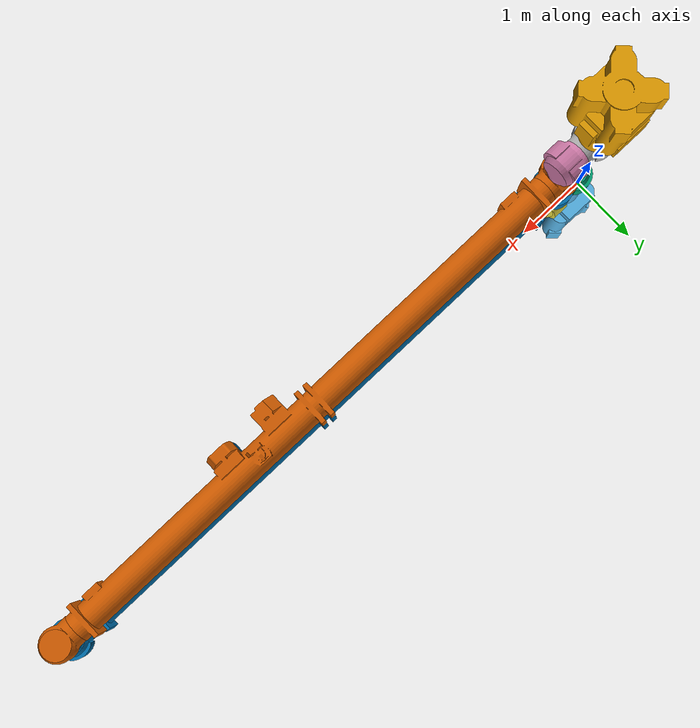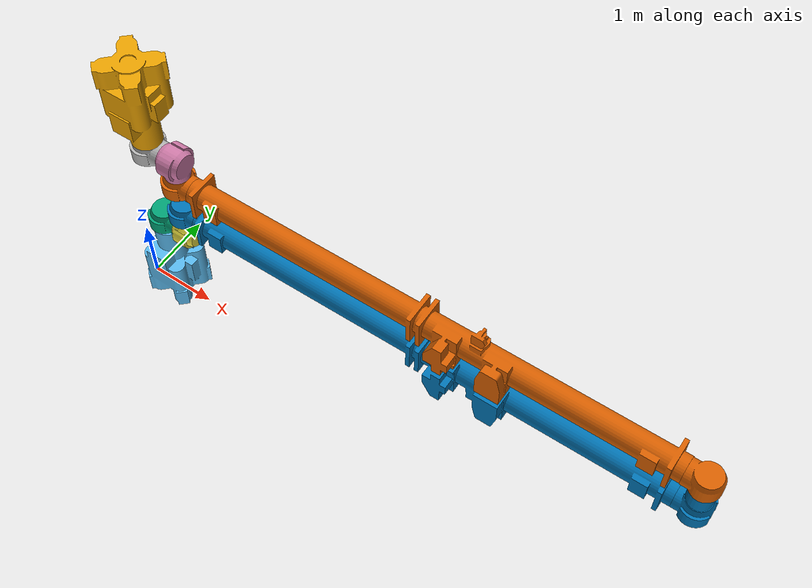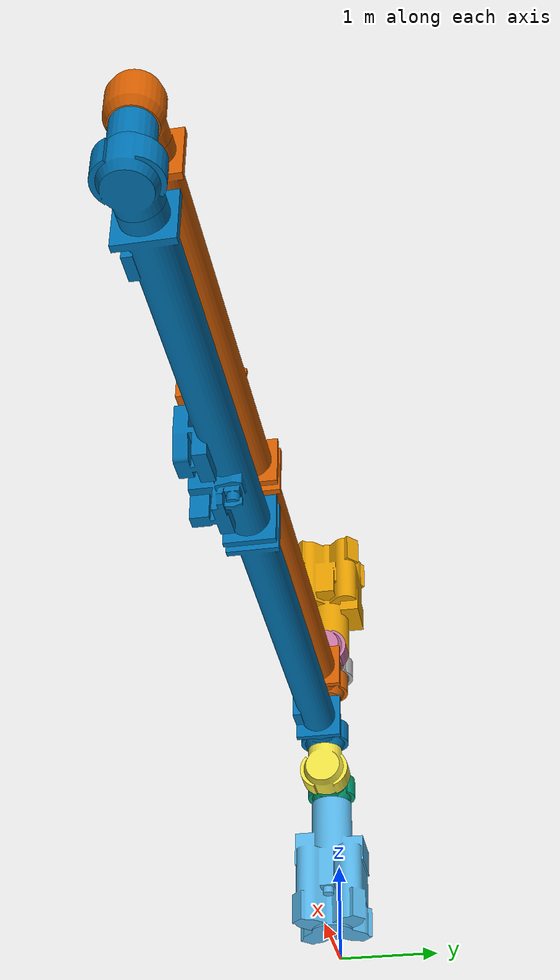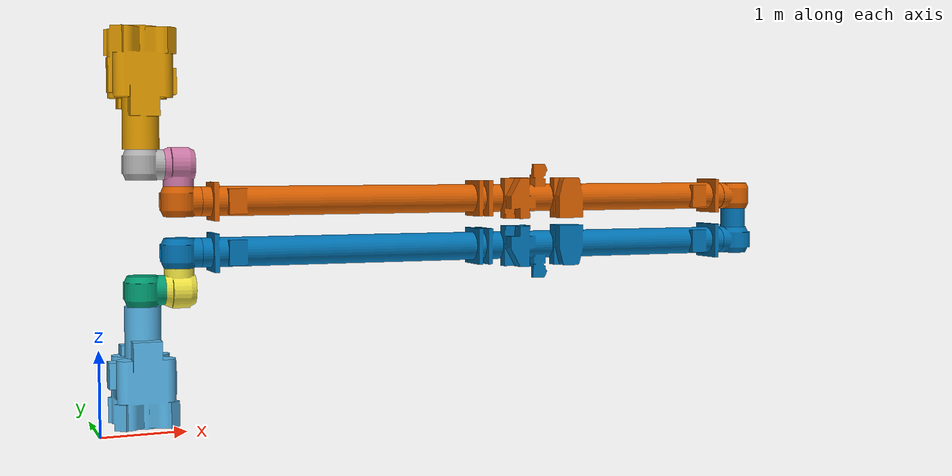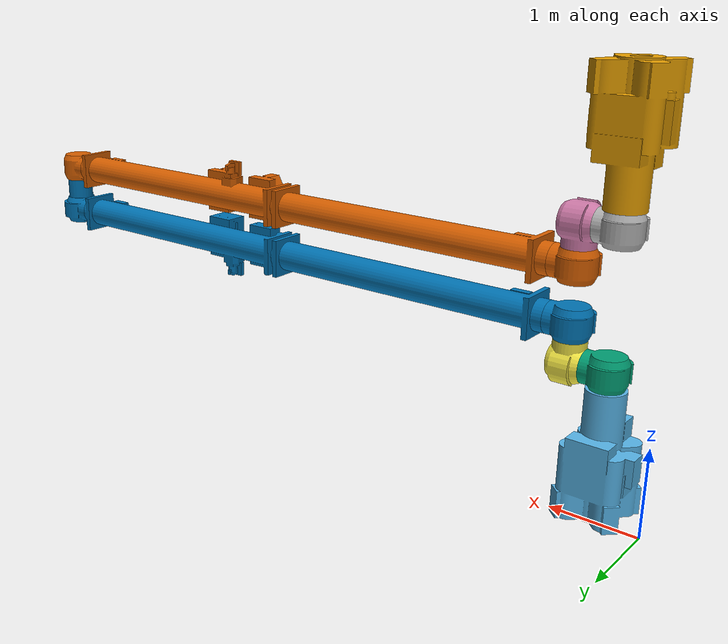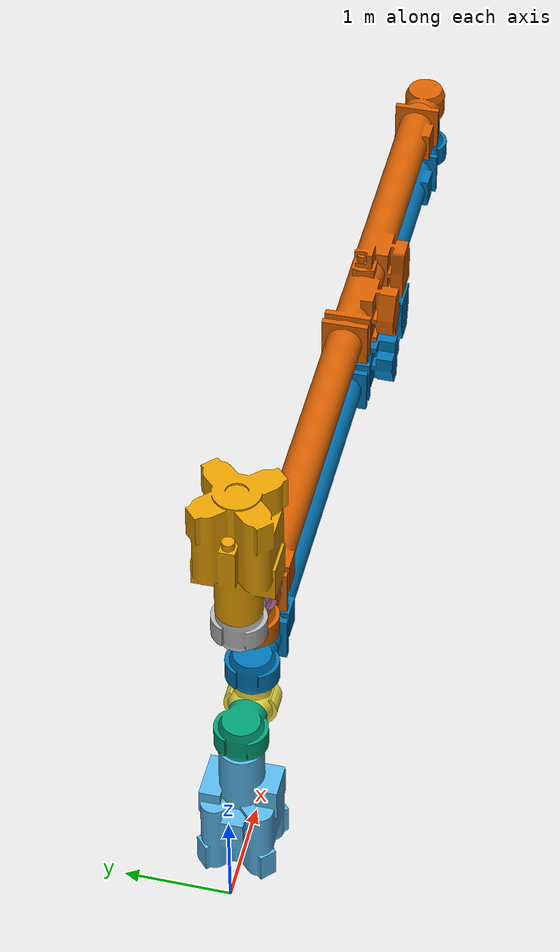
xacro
<?xml version="1.0" ?>

<robot name="SSRMS_Canadarm2"
  xmlns:xacro="http://wiki.ros.org/xacro">

  <xacro:arg name="xyz" default="0.5 0.0 1.5" />
  <xacro:arg name="rpy" default="3.1416 0.0 0.0" />

  <!-- Gazebo - ROS2 Control macro -->
  <xacro:include filename="$(find canadarm_description)/models/urdf/SSRMS_Canadarm2.gazebo.xacro" />
  <xacro:ssrms_canadarm2_gazebo command_interface="position" />

  <link name="world" />

  <joint name="world_joint" type="fixed">
    <parent link="world"/>
    <child link="Base_SSRMS"/>
    <!-- Rotate Frame to Match the frames on Fig. 13 in Paper -->
    <origin rpy="$(arg rpy)" xyz="$(arg xyz)"/>
  </joint>

  <!-- SSRMS_Canadarm2 Dummy Base Body-->
  <link name="Base_SSRMS">
    <inertial>
      <origin rpy="0 0 0" xyz="0 0 0.5"/>
      <mass value="243.66"/>
      <inertia ixx="44.413" ixy="0" ixz="0" iyy="44.413" iyz="0" izz="9.336"/>
    </inertial>
    <visual>
      <origin rpy="0 0 0" xyz="0 0 0"/>
      <geometry>
        <mesh filename="file://$(find canadarm_description)/models/meshes/ee.dae" scale="1.0 1.0 1.0" />
      </geometry>
    </visual>
    <collision>
      <origin rpy="0 0 0" xyz="0 0 0"/>
      <geometry>
        <mesh filename="file://$(find canadarm_description)/models/meshes/ee.stl" scale="1.0 1.0 1.0" />
      </geometry>
    </collision>
  </link>

  <!-- Dummy Joint Joining Base to Body B1 -->
  <joint name="Base_Joint" type="revolute">
    <parent link="Base_SSRMS"/>
    <child link="B1"/>
    <!-- Rotate Frame to Match the frames on Fig. 13 in Paper -->
    <origin rpy="0 0 0" xyz="0 0 0"/>
    <axis xyz="0 0 1"/>
    <limit lower="-4.71239" upper="4.71239" effort="2332" velocity="0.0698132"/>
  </joint>

  <!--Manipulator-->
  <!-- Link 1 -->
  <link name="B1">
    <inertial>
      <origin rpy="0 -1.5708 0" xyz="0.25082 0 -0.175"/>
      <mass value="105.98"/>
      <inertia ixx="12.19" ixy="0" ixz="0" iyy="12.19" iyz="0" izz="3.061"/>
    </inertial>

    <visual>
      <origin rpy="0 -1.5708 0" xyz="0.25082 0 -0.175"/>
      <geometry>
        <mesh filename="file://$(find canadarm_description)/models/meshes/joint_v3_0.dae" scale="1.0 1.0 1.0" />
      </geometry>
    </visual>
    <collision>
      <origin rpy="0 -1.5708 0" xyz="0.25082 0 -0.175"/>
      <geometry>
        <mesh filename="file://$(find canadarm_description)/models/meshes/joint_v3_0.stl" scale="1.0 1.0 1.0" />
      </geometry>
    </collision>
  </link>

  <!-- Joint 1: Shoulder Roll Joint -->
  <joint name="Shoulder_Roll" type="revolute">
    <parent link="B1"/>
    <child link="B2"/>
    <origin rpy="0 0 0" xyz="0.25082 0 -0.175"/>
    <axis xyz="1 0 0"/>
    <limit lower="-4.71239" upper="4.71239" effort="2332" velocity="0.0698132"/>
  </joint>

  <!-- Link 2 -->
  <link name="B2">
    <inertial>
      <origin rpy="0 0 0" xyz="0.175 0 -0.25082"/>
      <mass value="105.98"/>
      <inertia ixx="12.19" ixy="0" ixz="0" iyy="12.13" iyz="0" izz="3.061"/>
    </inertial>

    <visual>
      <origin rpy="0 0 0" xyz="0.175 0 -0.25082"/>
      <geometry>
        <mesh filename="file://$(find canadarm_description)/models/meshes/joint_v3_0.dae" scale="1.0 1.0 1.0" />
      </geometry>
    </visual>
    <collision>
      <origin rpy="0 0 0" xyz="0.175 0 -0.25082"/>
      <geometry>
        <mesh filename="file://$(find canadarm_description)/models/meshes/joint_v3_0.stl" scale="1.0 1.0 1.0" />
      </geometry>
    </collision>
  </link>

  <!-- Joint 2: Shoulder Yaw Joint -->
  <joint name="Shoulder_Yaw" type="revolute">
    <parent link="B2"/>
    <child link="B3"/>
    <origin rpy="0 0 0" xyz="0.175 0 -0.25082"/>
    <axis xyz="0 0 1"/>
    <limit lower="-4.71239" upper="4.71239" effort="2332" velocity="0.0698132"/>
  </joint>

  <!-- Link 3 -->
  <link name="B3">

    <inertial>
      <origin rpy="3.14 0 0" xyz="4.0 0 -0.175"/>
      <mass value="314.88"/>
      <inertia ixx="15.41" ixy="0" ixz="0" iyy="2094.71" iyz="0" izz="2103.19"/>
    </inertial>

    <visual>
      <origin rpy="0 -1.5708 0" xyz="0.25082 0 -0.175"/>
      <geometry>
        <mesh filename="file://$(find canadarm_description)/models/meshes/joint_v3_0.dae" scale="1.0 1.0 1.0" />
      </geometry>
    </visual>
    <collision>
      <origin rpy="0 -1.5708 0" xyz="0.25082 0 -0.175"/>
      <geometry>
        <mesh filename="file://$(find canadarm_description)/models/meshes/joint_v3_0.stl" scale="1.0 1.0 1.0" />
      </geometry>
    </collision>

    <visual>
      <origin rpy="-1.5708 0 -1.5708" xyz="0.25082 0 -0.175"/>
      <geometry>
        <mesh filename="file://$(find canadarm_description)/models/meshes/long_link_1_v3_0.dae" scale="1.0 1.0 1.0" />
      </geometry>
    </visual>
    <collision>
      <origin rpy="-1.5708 0 -1.5708" xyz="0.25082 0 -0.175"/>
      <geometry>
        <mesh filename="file://$(find canadarm_description)/models/meshes/long_link_1_v3_0.stl" scale="1.0 1.0 1.0" />
      </geometry>
    </collision>

    <visual>
      <origin rpy="0 1.5708 0" xyz="7.36082 0 -0.175"/>
      <geometry>
        <mesh filename="file://$(find canadarm_description)/models/meshes/joint_v3_0.dae" scale="1.0 1.0 1.0" />
      </geometry>
    </visual>
    <collision>
      <origin rpy="0 1.5708 0" xyz="7.36082 0 -0.175"/>
      <geometry>
        <mesh filename="file://$(find canadarm_description)/models/meshes/joint_v3_0.stl" scale="1.0 1.0 1.0" />
      </geometry>
    </collision>

    <visual>
      <origin rpy="0 0 1.5708" xyz="7.61164 0 -0.35"/>
      <geometry>
        <cylinder radius="0.165" length="0.5"/>
      </geometry>
    </visual>

  </link>

  <!-- Joint 4: Elbow Pitch Joint -->
  <joint name="Elbow_Pitch" type="revolute">
    <parent link="B3"/>
    <child link="B4"/>
    <origin rpy="0 0 0" xyz="7.61164 0 -0.6"/>
    <axis xyz="0 0 1"/>
    <limit lower="-4.71239" upper="4.71239" effort="2332" velocity="0.0698132"/>
  </joint>

  <!-- Link 5 -->
  <link name="B4">

    <inertial>
      <origin rpy="0 0 0" xyz="-3.6 0 -0.175"/>
      <mass value="279.2"/>
      <inertia ixx="9.522" ixy="0" ixz="0" iyy="1966.28" iyz="0" izz="1966.28"/>
    </inertial>

    <visual>
      <origin rpy="0 1.5708 0" xyz="-0.25082 0 -0.175"/>
      <geometry>
        <mesh filename="file://$(find canadarm_description)/models/meshes/link_joint_v2_1.dae" scale="1.0 1.0 1.0" />
      </geometry>
    </visual>
    <collision>
      <origin rpy="0 1.5708 0" xyz="-0.25082 0 -0.175"/>
      <geometry>
        <mesh filename="file://$(find canadarm_description)/models/meshes/link_joint_v2_1.stl" scale="1.0 1.0 1.0" />
      </geometry>
    </collision>

    <visual>
      <origin rpy="1.57 -3.14 1.57" xyz="-7.36082 0 -0.175"/>
      <geometry>
        <mesh filename="file://$(find canadarm_description)/models/meshes/long_link_2_v3_0.dae" scale="1.0 1.0 1.0" />
      </geometry>
    </visual>
    <collision>
      <origin rpy="1.57 -3.14 1.57" xyz="-7.36082 0 -0.175"/>
      <geometry>
        <mesh filename="file://$(find canadarm_description)/models/meshes/long_link_2_v3_0.stl" scale="1.0 1.0 1.0" />
      </geometry>
    </collision>

    <visual>
      <origin rpy="0 -1.57 0" xyz="-7.36082 0 -0.175"/>
      <geometry>
        <mesh filename="file://$(find canadarm_description)/models/meshes/joint_v3_0.dae" scale="1.0 1.0 1.0" />
      </geometry>
    </visual>
    <collision>
      <origin rpy="0 -1.57 0" xyz="-7.36082 0 -0.175"/>
      <geometry>
        <mesh filename="file://$(find canadarm_description)/models/meshes/joint_v3_0.stl" scale="1.0 1.0 1.0" />
      </geometry>
    </collision>

  </link>

  <!-- Joint 5: Wrist Pitch Joint -->
  <joint name="Wrist_Pitch" type="revolute">
    <parent link="B4"/>
    <child link="B5"/>
    <origin rpy="0 0 0" xyz="-7.61164 0 -0.35"/>
    <axis xyz="0 0 -1"/>
    <limit lower="-4.71239" upper="4.71239" effort="2332" velocity="0.0698132"/>
  </joint>

  <!-- Link 6 -->
  <link name="B5">

    <inertial>
      <origin rpy="1.5708 0 0" xyz="0 0 0.0"/>
      <mass value="105.98"/>
      <inertia ixx="8.305" ixy="0" ixz="0" iyy="3.061" iyz="0" izz="8.0386"/>
    </inertial>

    <visual>
      <origin rpy="0 -3.14 0" xyz="0 0 0"/>
      <geometry>
        <mesh filename="file://$(find canadarm_description)/models/meshes/joint_v3_0.dae" scale="1.0 1.0 1.0" />
      </geometry>
    </visual>
    <collision>
      <origin rpy="0 -3.14 0" xyz="0 0 0"/>
      <geometry>
        <mesh filename="file://$(find canadarm_description)/models/meshes/joint_v3_0.stl" scale="1.0 1.0 1.0" />
      </geometry>
    </collision>
  </link>

  <!-- Joint 6: Wrist Yaw Joint -->
  <joint name="Wrist_Yaw" type="revolute">
    <parent link="B5"/>
    <child link="B6"/>
    <origin rpy="0 0 0" xyz="-0.175 0 -0.25082"/>
    <axis xyz="1 0 0"/>
    <limit lower="-4.71239" upper="4.71239" effort="2332" velocity="0.0698132"/>
  </joint>

  <!-- Link 7 -->
  <link name="B6">

    <inertial>
      <origin rpy="0 -1.5708 0" xyz="0 0 0"/>
      <mass value="105.98"/>
      <inertia ixx="12.13" ixy="0" ixz="0" iyy="12.13" iyz="0" izz="3.061"/>
    </inertial>

    <visual>
      <origin rpy="0 -1.5708 0" xyz="0 0 0"/>
      <geometry>
        <mesh filename="file://$(find canadarm_description)/models/meshes/joint_v3_0.dae" scale="1.0 1.0 1.0" />
      </geometry>
    </visual>
    <collision>
      <origin rpy="0 -1.5708 0" xyz="0 0 0"/>
      <geometry>
        <mesh filename="file://$(find canadarm_description)/models/meshes/joint_v3_0.stl" scale="1.0 1.0 1.0" />
      </geometry>
    </collision>

  </link>

  <!-- Joint 7: Wrist Roll Joint -->
  <joint name="Wrist_Roll" type="revolute">
    <parent link="B6"/>
    <child link="EE_SSRMS"/>
    <origin rpy="0 0 0" xyz="-0.25082 0 -0.175"/>
    <axis xyz="0 0 1"/>
    <limit lower="-4.71239" upper="4.71239" effort="2332" velocity="0.0698132"/>
  </joint>

  <!-- Link 8 -->
  <link name="EE_SSRMS">

    <inertial>
      <origin rpy="0 1.5708 0" xyz="0 0 -0.5"/>
      <mass value="243.66"/>
      <inertia ixx="9.336" ixy="0" ixz="0" iyy="44.41" iyz="0" izz="44.41"/>
    </inertial>

    <visual>
      <origin rpy="0 -3.1415 0" xyz="0 0 0"/>
      <geometry>
        <mesh filename="file://$(find canadarm_description)/models/meshes/ee.dae" scale="1.0 1.0 1.0" />
      </geometry>
    </visual>
    <collision>
      <origin rpy="0 -3.1415 0" xyz="0 0 0"/>
      <geometry>
        <mesh filename="file://$(find canadarm_description)/models/meshes/ee.stl" scale="1.0 1.0 1.0" />
      </geometry>
    </collision>

  </link>

</robot>

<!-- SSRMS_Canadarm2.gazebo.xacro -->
<robot xmlns:xacro="http://wiki.ros.org/xacro">

    <xacro:macro name="ssrms_canadarm2_gazebo" params="command_interface:=effort">

        <ros2_control name="GazeboSystem" type="system">
            <hardware>
                <plugin>gz_ros2_control/GazeboSimSystem</plugin>
            </hardware>
            <joint name="Base_Joint">
                <command_interface name="${command_interface}"/>
                <state_interface name="position"/>
                <state_interface name="velocity"/>
                <state_interface name="effort"/>
            </joint>
            <joint name="Shoulder_Roll">
                <command_interface name="${command_interface}"/>
                <state_interface name="position"/>
                <state_interface name="velocity"/>
                <state_interface name="effort"/>
            </joint>
            <joint name="Shoulder_Yaw">
                <command_interface name="${command_interface}"/>
                <state_interface name="position"/>
                <state_interface name="velocity"/>
                <state_interface name="effort"/>
            </joint>
            <joint name="Elbow_Pitch">
                <command_interface name="${command_interface}"/>
                <state_interface name="position"/>
                <state_interface name="velocity"/>
                <state_interface name="effort"/>
            </joint>
            <joint name="Wrist_Pitch">
                <command_interface name="${command_interface}"/>
                <state_interface name="position"/>
                <state_interface name="velocity"/>
                <state_interface name="effort"/>
            </joint>
            <joint name="Wrist_Yaw">
                <command_interface name="${command_interface}"/>
                <state_interface name="position"/>
                <state_interface name="velocity"/>
                <state_interface name="effort"/>
            </joint>
            <joint name="Wrist_Roll">
                <command_interface name="${command_interface}"/>
                <state_interface name="position"/>
                <state_interface name="velocity"/>
                <state_interface name="effort"/>
            </joint>
        </ros2_control>

        <gazebo>
            <plugin filename="gz_ros2_control-system" name="gz_ros2_control::GazeboSimROS2ControlPlugin">
                <robot_param>robot_description</robot_param>
                <robot_param_node>robot_state_publisher</robot_param_node>
                <parameters>$(find canadarm_description)/models/config/canadarm_control.yaml</parameters>
            </plugin>
        </gazebo>

        <!-- Colors -->
        <material name="White">
            <color rgba="1.0 1.0 1.0 1.0"/>
        </material>

    </xacro:macro>

</robot>
